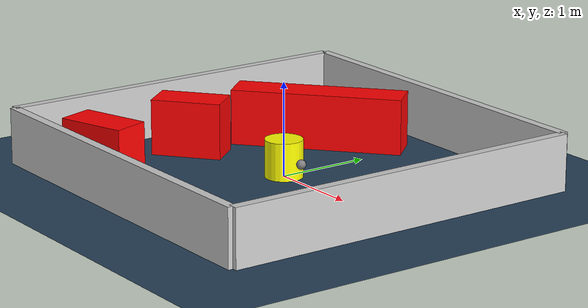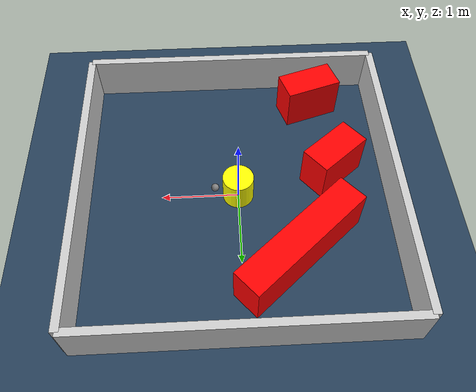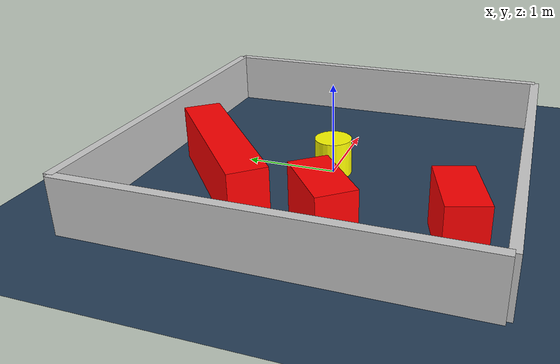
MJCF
<?xml version="1.0" ?>
<mujoco model="generated_environment">
  <option timestep="0.01" integrator="RK4" cone="elliptic"/>
  <default>
    <geom density="1"/>
  </default>
  <asset>
    <texture builtin="gradient" height="3072" rgb1="0.3 0.5 0.7" rgb2="0 0 0" type="skybox" width="512"/>
    <texture builtin="checker" height="300" mark="edge" markrgb="0.8 0.8 0.8" name="groundplane" rgb1="0.2 0.3 0.4" rgb2="0.1 0.2 0.3" type="2d" width="300"/>
    <material name="groundplane" reflectance="0.2" texrepeat="5 5" texture="groundplane" texuniform="true"/>
    <material name="robot" rgba="0.0 1.0 0.0 1"/>
  </asset>
  <worldbody>
    <light dir="0 0 -1" directional="true" pos="0 0 1.5"/>
    <geom condim="4" friction="1.0 0.005 0.001" material="groundplane" name="floor" size="0 0 0.05" type="plane"/>
    <body name="walls">
      <geom name="wall_1" condim="4" pos="-2.0 0.0 0.3" rgba="0.800000011920929 0.800000011920929 0.800000011920929 1.0" size="0.05 2.0 0.3" type="box"/>
      <geom name="wall_2" condim="4" pos="2.0 0.0 0.3" rgba="0.800000011920929 0.800000011920929 0.800000011920929 1.0" size="0.05 2.0 0.3" type="box"/>
      <geom name="wall_3" condim="4" pos="0.0 -2.0 0.3" rgba="0.800000011920929 0.800000011920929 0.800000011920929 1.0" size="2.0 0.05 0.3" type="box"/>
      <geom name="wall_4" condim="4" pos="0.0 2.0 0.3" rgba="0.800000011920929 0.800000011920929 0.800000011920929 1.0" size="2.0 0.05 0.3" type="box"/>
    </body>
    <body name="robot">
      <joint name="joint_x" type="slide" pos="0 0 0" axis="1 0 0"/>
      <joint name="joint_y" type="slide" pos="0 0 0" axis="0 1 0"/>
      <geom name="robot" type="sphere" pos="0.3 0.0 0.2" size="0.05" mass="5." friction="1.0 0.005 0.0001" condim="4" rgba="0.5 0.5 0.5 1.0"/>
      <site name="sensor_ball"/>
    </body>
    <body name="obstacle_movable_1">
      <geom name="obstacle_movable_1" condim="4" pos="0.0 0.0 0.2" euler="0 0 0.0" friction="1.0 0.005 0.001" rgba="1.0 1.0 0.0 1.0" size="0.2 0.2 0.0" type="cylinder" mass="0.1"/>
      <joint type="free"/>
    </body>
    <body name="obstacle_2_static">
      <geom name="obstacle_2_static" condim="4" pos="-0.6972068895150727 0.9614020769852283 0.3" euler="0 0 41.358880628219545" friction="1.0 0.005 0.001" rgba="1 0 0 1" size="0.9205146310390102 0.2 0.3" type="box"/>
    </body>
    <body name="obstacle_3_static">
      <geom name="obstacle_3_static" condim="4" pos="-1.06923147544466 -1.4958484388943514 0.3" euler="0 0 17.811761166140492" friction="1.0 0.005 0.001" rgba="1 0 0 1" size="0.37817795373129104 0.2 0.3" type="box"/>
    </body>
    <body name="obstacle_4_static">
      <geom name="obstacle_4_static" condim="4" pos="-1.2620301147711233 -0.30292515342141635 0.3" euler="0 0 39.32577903731097" friction="1.0 0.005 0.001" rgba="1 0 0 1" size="0.3753054149920616 0.2 0.3" type="box"/>
    </body>
  </worldbody>
  <actuator>
    <motor name="actuator_x" joint="joint_x" gear="1" ctrlrange="-1 1"/>
    <motor name="actuator_y" joint="joint_y" gear="1" ctrlrange="-1 1"/>
  </actuator>
</mujoco>
